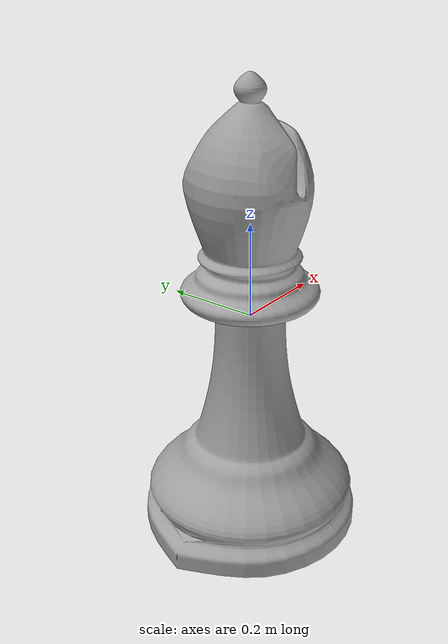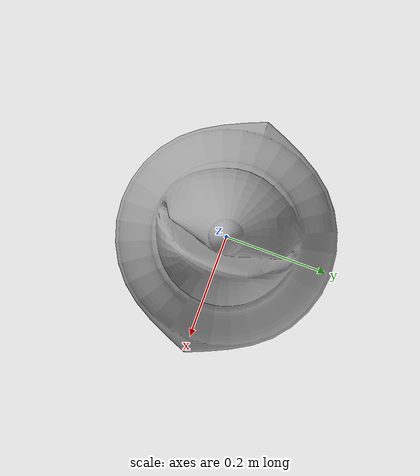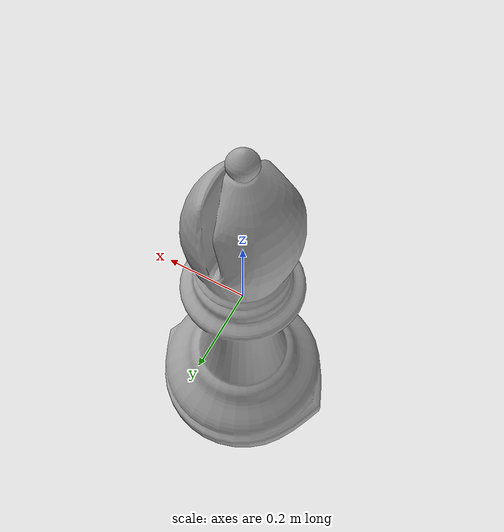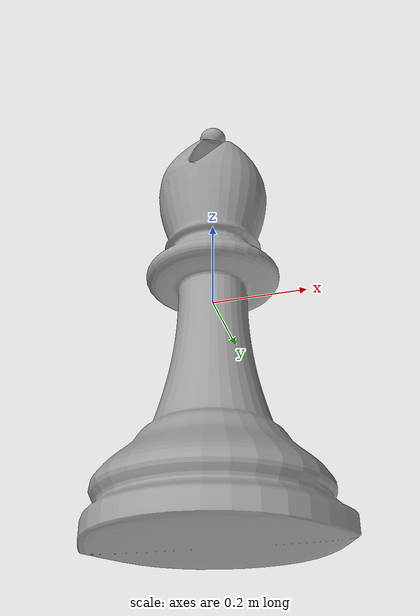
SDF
<?xml version="1.0" ?>
<sdf version="1.5">
  <model name='chess3'>
    <pose>0 0 0 0 0 0</pose>
    <static>1</static>
    <link name='body'>
      <collision name="chess3-coll">
        <pose>0 0 -0.5 0 0 0</pose>
        <geometry>
          <mesh>
            <uri>model://chess3/meshes/chess3.dae</uri>
          </mesh>
        </geometry>
      </collision>
      <visual name='chess3'>
        <cast_shadows>1</cast_shadows>
        <pose>0 0 -0.5 0 0 0</pose>
        <geometry>
          <mesh>
            <uri>model://chess3/meshes/chess3.dae</uri>
          </mesh>
        </geometry>
      </visual>
      <velocity_decay>
        <linear>0</linear>
        <angular>0</angular>
      </velocity_decay>
      <self_collide>0</self_collide>
      <kinematic>0</kinematic>
      <gravity>1</gravity>
    </link>
  </model>

</sdf>
